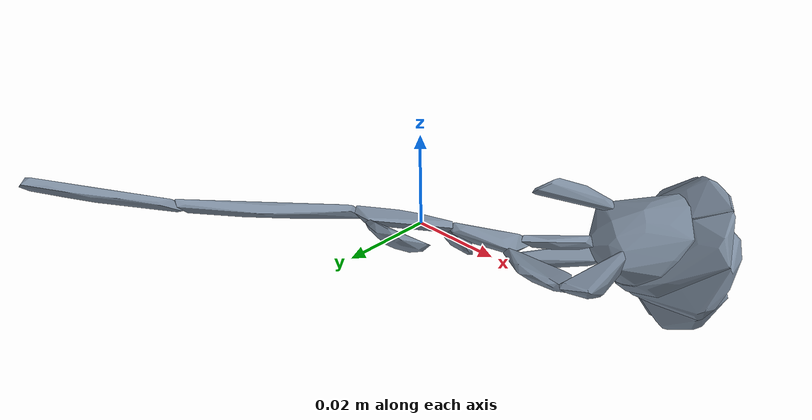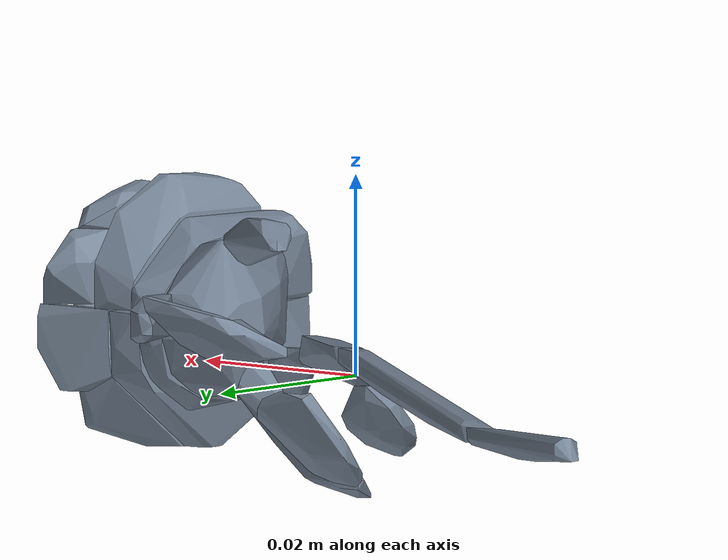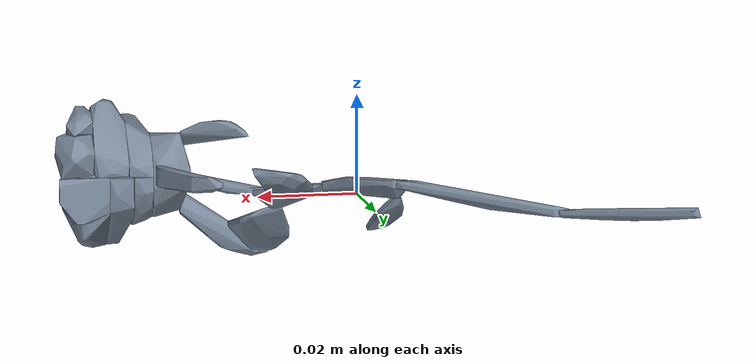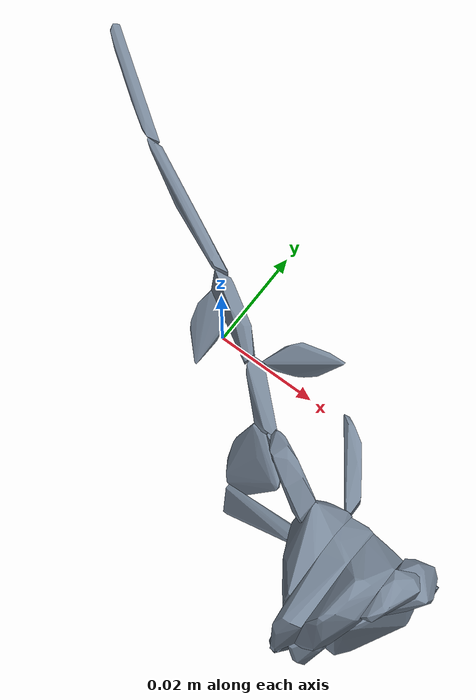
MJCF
<mujoco model="shapenetsem13">
  <asset>
    <mesh file="meshes/shapenetsem13/shapenetsem13_0.stl" name="shapenetsem13_0" scale="0.8 0.8 0.8"/>
    <mesh file="meshes/shapenetsem13/shapenetsem13_1.stl" name="shapenetsem13_1" scale="0.8 0.8 0.8"/>
    <mesh file="meshes/shapenetsem13/shapenetsem13_2.stl" name="shapenetsem13_2" scale="0.8 0.8 0.8"/>
    <mesh file="meshes/shapenetsem13/shapenetsem13_3.stl" name="shapenetsem13_3" scale="0.8 0.8 0.8"/>
    <mesh file="meshes/shapenetsem13/shapenetsem13_4.stl" name="shapenetsem13_4" scale="0.8 0.8 0.8"/>
    <mesh file="meshes/shapenetsem13/shapenetsem13_5.stl" name="shapenetsem13_5" scale="0.8 0.8 0.8"/>
    <mesh file="meshes/shapenetsem13/shapenetsem13_6.stl" name="shapenetsem13_6" scale="0.8 0.8 0.8"/>
    <mesh file="meshes/shapenetsem13/shapenetsem13_7.stl" name="shapenetsem13_7" scale="0.8 0.8 0.8"/>
    <mesh file="meshes/shapenetsem13/shapenetsem13_8.stl" name="shapenetsem13_8" scale="0.8 0.8 0.8"/>
    <mesh file="meshes/shapenetsem13/shapenetsem13_9.stl" name="shapenetsem13_9" scale="0.8 0.8 0.8"/>
    <mesh file="meshes/shapenetsem13/shapenetsem13_10.stl" name="shapenetsem13_10" scale="0.8 0.8 0.8"/>
    <mesh file="meshes/shapenetsem13/shapenetsem13_11.stl" name="shapenetsem13_11" scale="0.8 0.8 0.8"/>
    <mesh file="meshes/shapenetsem13/shapenetsem13_12.stl" name="shapenetsem13_12" scale="0.8 0.8 0.8"/>
    <mesh file="meshes/shapenetsem13/shapenetsem13_13.stl" name="shapenetsem13_13" scale="0.8 0.8 0.8"/>
    <mesh file="meshes/shapenetsem13/shapenetsem13_14.stl" name="shapenetsem13_14" scale="0.8 0.8 0.8"/>
    <mesh file="meshes/shapenetsem13/shapenetsem13_15.stl" name="shapenetsem13_15" scale="0.8 0.8 0.8"/>
    <mesh file="meshes/shapenetsem13/shapenetsem13_16.stl" name="shapenetsem13_16" scale="0.8 0.8 0.8"/>
    <mesh file="meshes/shapenetsem13/shapenetsem13_17.stl" name="shapenetsem13_17" scale="0.8 0.8 0.8"/>
    <mesh file="meshes/shapenetsem13/shapenetsem13_18.stl" name="shapenetsem13_18" scale="0.8 0.8 0.8"/>
    <mesh file="meshes/shapenetsem13/shapenetsem13_19.stl" name="shapenetsem13_19" scale="0.8 0.8 0.8"/>
  </asset>
  <worldbody>
    <body>
      <body name="collision">
        <geom pos="0 0 0" mesh="shapenetsem13_0" type="mesh" solimp="0.998 0.998 0.001" solref="0.001 1" density="100" friction="0.95 0.3 0.1" rgba="0.47 0.53 0.6 1" group="1" condim="4"/>
        <geom pos="0 0 0" mesh="shapenetsem13_1" type="mesh" solimp="0.998 0.998 0.001" solref="0.001 1" density="100" friction="0.95 0.3 0.1" rgba="0.47 0.53 0.6 1" group="1" condim="4"/>
        <geom pos="0 0 0" mesh="shapenetsem13_2" type="mesh" solimp="0.998 0.998 0.001" solref="0.001 1" density="100" friction="0.95 0.3 0.1" rgba="0.47 0.53 0.6 1" group="1" condim="4"/>
        <geom pos="0 0 0" mesh="shapenetsem13_3" type="mesh" solimp="0.998 0.998 0.001" solref="0.001 1" density="100" friction="0.95 0.3 0.1" rgba="0.47 0.53 0.6 1" group="1" condim="4"/>
        <geom pos="0 0 0" mesh="shapenetsem13_4" type="mesh" solimp="0.998 0.998 0.001" solref="0.001 1" density="100" friction="0.95 0.3 0.1" rgba="0.47 0.53 0.6 1" group="1" condim="4"/>
        <geom pos="0 0 0" mesh="shapenetsem13_5" type="mesh" solimp="0.998 0.998 0.001" solref="0.001 1" density="100" friction="0.95 0.3 0.1" rgba="0.47 0.53 0.6 1" group="1" condim="4"/>
        <geom pos="0 0 0" mesh="shapenetsem13_6" type="mesh" solimp="0.998 0.998 0.001" solref="0.001 1" density="100" friction="0.95 0.3 0.1" rgba="0.47 0.53 0.6 1" group="1" condim="4"/>
        <geom pos="0 0 0" mesh="shapenetsem13_7" type="mesh" solimp="0.998 0.998 0.001" solref="0.001 1" density="100" friction="0.95 0.3 0.1" rgba="0.47 0.53 0.6 1" group="1" condim="4"/>
        <geom pos="0 0 0" mesh="shapenetsem13_8" type="mesh" solimp="0.998 0.998 0.001" solref="0.001 1" density="100" friction="0.95 0.3 0.1" rgba="0.47 0.53 0.6 1" group="1" condim="4"/>
        <geom pos="0 0 0" mesh="shapenetsem13_9" type="mesh" solimp="0.998 0.998 0.001" solref="0.001 1" density="100" friction="0.95 0.3 0.1" rgba="0.47 0.53 0.6 1" group="1" condim="4"/>
        <geom pos="0 0 0" mesh="shapenetsem13_10" type="mesh" solimp="0.998 0.998 0.001" solref="0.001 1" density="100" friction="0.95 0.3 0.1" rgba="0.47 0.53 0.6 1" group="1" condim="4"/>
        <geom pos="0 0 0" mesh="shapenetsem13_11" type="mesh" solimp="0.998 0.998 0.001" solref="0.001 1" density="100" friction="0.95 0.3 0.1" rgba="0.47 0.53 0.6 1" group="1" condim="4"/>
        <geom pos="0 0 0" mesh="shapenetsem13_12" type="mesh" solimp="0.998 0.998 0.001" solref="0.001 1" density="100" friction="0.95 0.3 0.1" rgba="0.47 0.53 0.6 1" group="1" condim="4"/>
        <geom pos="0 0 0" mesh="shapenetsem13_13" type="mesh" solimp="0.998 0.998 0.001" solref="0.001 1" density="100" friction="0.95 0.3 0.1" rgba="0.47 0.53 0.6 1" group="1" condim="4"/>
        <geom pos="0 0 0" mesh="shapenetsem13_14" type="mesh" solimp="0.998 0.998 0.001" solref="0.001 1" density="100" friction="0.95 0.3 0.1" rgba="0.47 0.53 0.6 1" group="1" condim="4"/>
        <geom pos="0 0 0" mesh="shapenetsem13_15" type="mesh" solimp="0.998 0.998 0.001" solref="0.001 1" density="100" friction="0.95 0.3 0.1" rgba="0.47 0.53 0.6 1" group="1" condim="4"/>
        <geom pos="0 0 0" mesh="shapenetsem13_16" type="mesh" solimp="0.998 0.998 0.001" solref="0.001 1" density="100" friction="0.95 0.3 0.1" rgba="0.47 0.53 0.6 1" group="1" condim="4"/>
        <geom pos="0 0 0" mesh="shapenetsem13_17" type="mesh" solimp="0.998 0.998 0.001" solref="0.001 1" density="100" friction="0.95 0.3 0.1" rgba="0.47 0.53 0.6 1" group="1" condim="4"/>
        <geom pos="0 0 0" mesh="shapenetsem13_18" type="mesh" solimp="0.998 0.998 0.001" solref="0.001 1" density="100" friction="0.95 0.3 0.1" rgba="0.47 0.53 0.6 1" group="1" condim="4"/>
        <geom pos="0 0 0" mesh="shapenetsem13_19" type="mesh" solimp="0.998 0.998 0.001" solref="0.001 1" density="100" friction="0.95 0.3 0.1" rgba="0.47 0.53 0.6 1" group="1" condim="4"/>
      </body>
      <body name="visual">
        <geom pos="0 0 0" mesh="shapenetsem13_0" type="mesh" rgba="0.11 0.44 0.03 1" conaffinity="0" contype="0" group="0" mass="0.0001"/>
        <geom pos="0 0 0" mesh="shapenetsem13_1" type="mesh" rgba="0.11 0.44 0.03 1" conaffinity="0" contype="0" group="0" mass="0.0001"/>
        <geom pos="0 0 0" mesh="shapenetsem13_2" type="mesh" rgba="0.11 0.44 0.03 1" conaffinity="0" contype="0" group="0" mass="0.0001"/>
        <geom pos="0 0 0" mesh="shapenetsem13_3" type="mesh" rgba="0.11 0.44 0.03 1" conaffinity="0" contype="0" group="0" mass="0.0001"/>
        <geom pos="0 0 0" mesh="shapenetsem13_4" type="mesh" rgba="0.11 0.44 0.03 1" conaffinity="0" contype="0" group="0" mass="0.0001"/>
        <geom pos="0 0 0" mesh="shapenetsem13_5" type="mesh" rgba="0.11 0.44 0.03 1" conaffinity="0" contype="0" group="0" mass="0.0001"/>
        <geom pos="0 0 0" mesh="shapenetsem13_6" type="mesh" rgba="0.11 0.44 0.03 1" conaffinity="0" contype="0" group="0" mass="0.0001"/>
        <geom pos="0 0 0" mesh="shapenetsem13_7" type="mesh" rgba="0.11 0.44 0.03 1" conaffinity="0" contype="0" group="0" mass="0.0001"/>
        <geom pos="0 0 0" mesh="shapenetsem13_8" type="mesh" rgba="0.11 0.44 0.03 1" conaffinity="0" contype="0" group="0" mass="0.0001"/>
        <geom pos="0 0 0" mesh="shapenetsem13_9" type="mesh" rgba="0.11 0.44 0.03 1" conaffinity="0" contype="0" group="0" mass="0.0001"/>
        <geom pos="0 0 0" mesh="shapenetsem13_10" type="mesh" rgba="0.11 0.44 0.03 1" conaffinity="0" contype="0" group="0" mass="0.0001"/>
        <geom pos="0 0 0" mesh="shapenetsem13_11" type="mesh" rgba="0.11 0.44 0.03 1" conaffinity="0" contype="0" group="0" mass="0.0001"/>
        <geom pos="0 0 0" mesh="shapenetsem13_12" type="mesh" rgba="0.11 0.44 0.03 1" conaffinity="0" contype="0" group="0" mass="0.0001"/>
        <geom pos="0 0 0" mesh="shapenetsem13_13" type="mesh" rgba="0.11 0.44 0.03 1" conaffinity="0" contype="0" group="0" mass="0.0001"/>
        <geom pos="0 0 0" mesh="shapenetsem13_14" type="mesh" rgba="0.11 0.44 0.03 1" conaffinity="0" contype="0" group="0" mass="0.0001"/>
        <geom pos="0 0 0" mesh="shapenetsem13_15" type="mesh" rgba="0.11 0.44 0.03 1" conaffinity="0" contype="0" group="0" mass="0.0001"/>
        <geom pos="0 0 0" mesh="shapenetsem13_16" type="mesh" rgba="0.11 0.44 0.03 1" conaffinity="0" contype="0" group="0" mass="0.0001"/>
        <geom pos="0 0 0" mesh="shapenetsem13_17" type="mesh" rgba="0.11 0.44 0.03 1" conaffinity="0" contype="0" group="0" mass="0.0001"/>
        <geom pos="0 0 0" mesh="shapenetsem13_18" type="mesh" rgba="0.11 0.44 0.03 1" conaffinity="0" contype="0" group="0" mass="0.0001"/>
        <geom pos="0 0 0" mesh="shapenetsem13_19" type="mesh" rgba="0.11 0.44 0.03 1" conaffinity="0" contype="0" group="0" mass="0.0001"/>
      </body>
      <site rgba="0 0 0 0" size="0.005" pos="0 0 -0.06" name="bottom_site"/>
      <site rgba="0 0 0 0" size="0.005" pos="0 0 0.04" name="top_site"/>
      <site rgba="0 0 0 0" size="0.005" pos="0.025 0.025 0" name="horizontal_radius_site"/>
    </body>
  </worldbody>
</mujoco>
